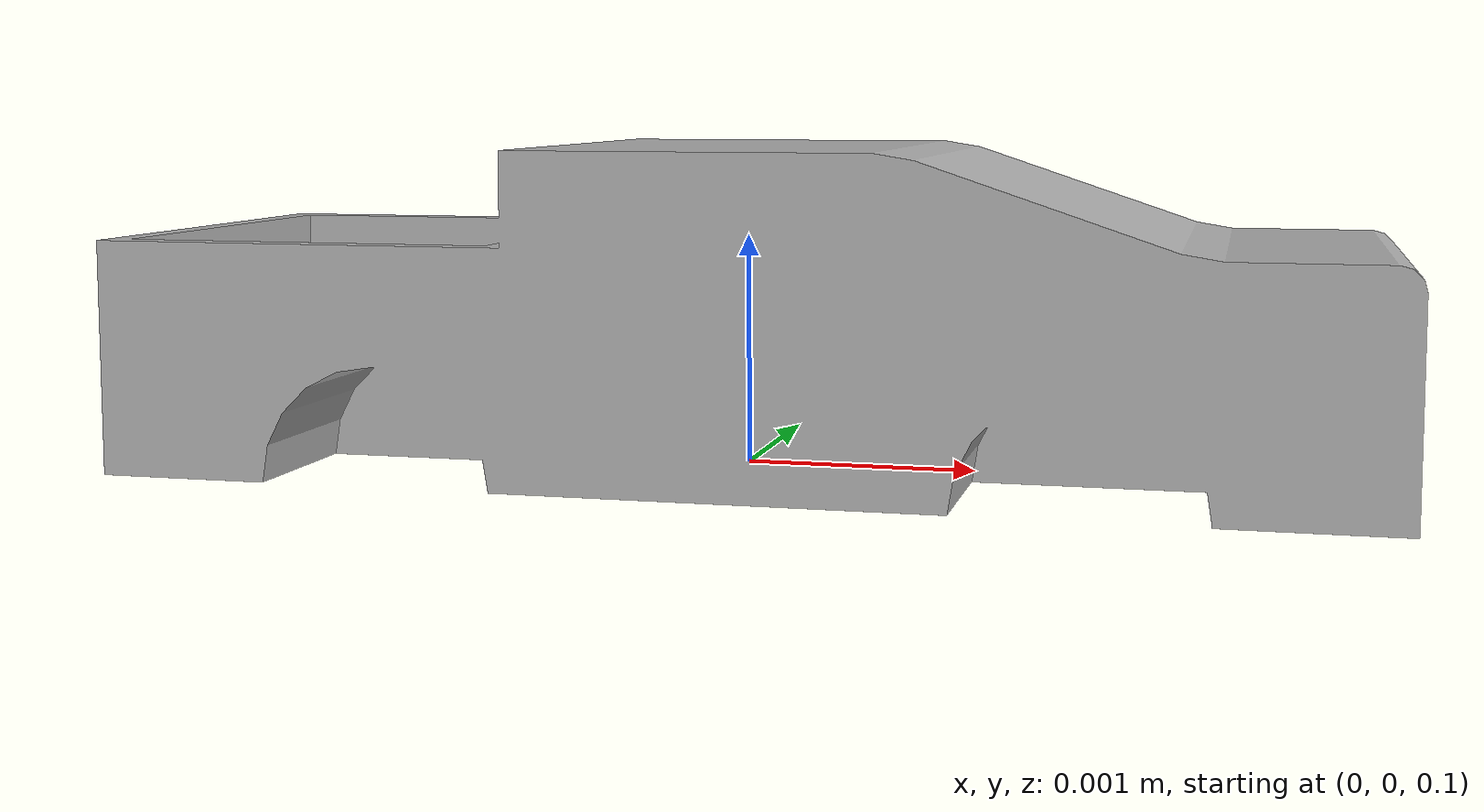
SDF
<?xml version='1.0'?>
<sdf version='1.4'>
  <model name="car">
  <static>true</static>
    <link name='base_body'>
      <pose>0 0 .1 0 0 0</pose>
       <collision name='collision'>
        <geometry>
          <mesh>
            <uri>model://car/meshes/car.stl</uri>
            <scale>0.001 0.001 0.001</scale>
          </mesh>
        </geometry>
      </collision>
      <visual name='visual'>
        <geometry>
          <mesh>
            <uri>model://car/meshes/car.stl</uri>
            <scale>0.001 0.001 0.001</scale>
          </mesh>
        </geometry>
	<material>
          <script>
            <uri>model://car/mat/mat.material</uri>
            <name>car_mat</name>
          </script>
        </material>
      </visual>
    </link>
  </model>
</sdf>
